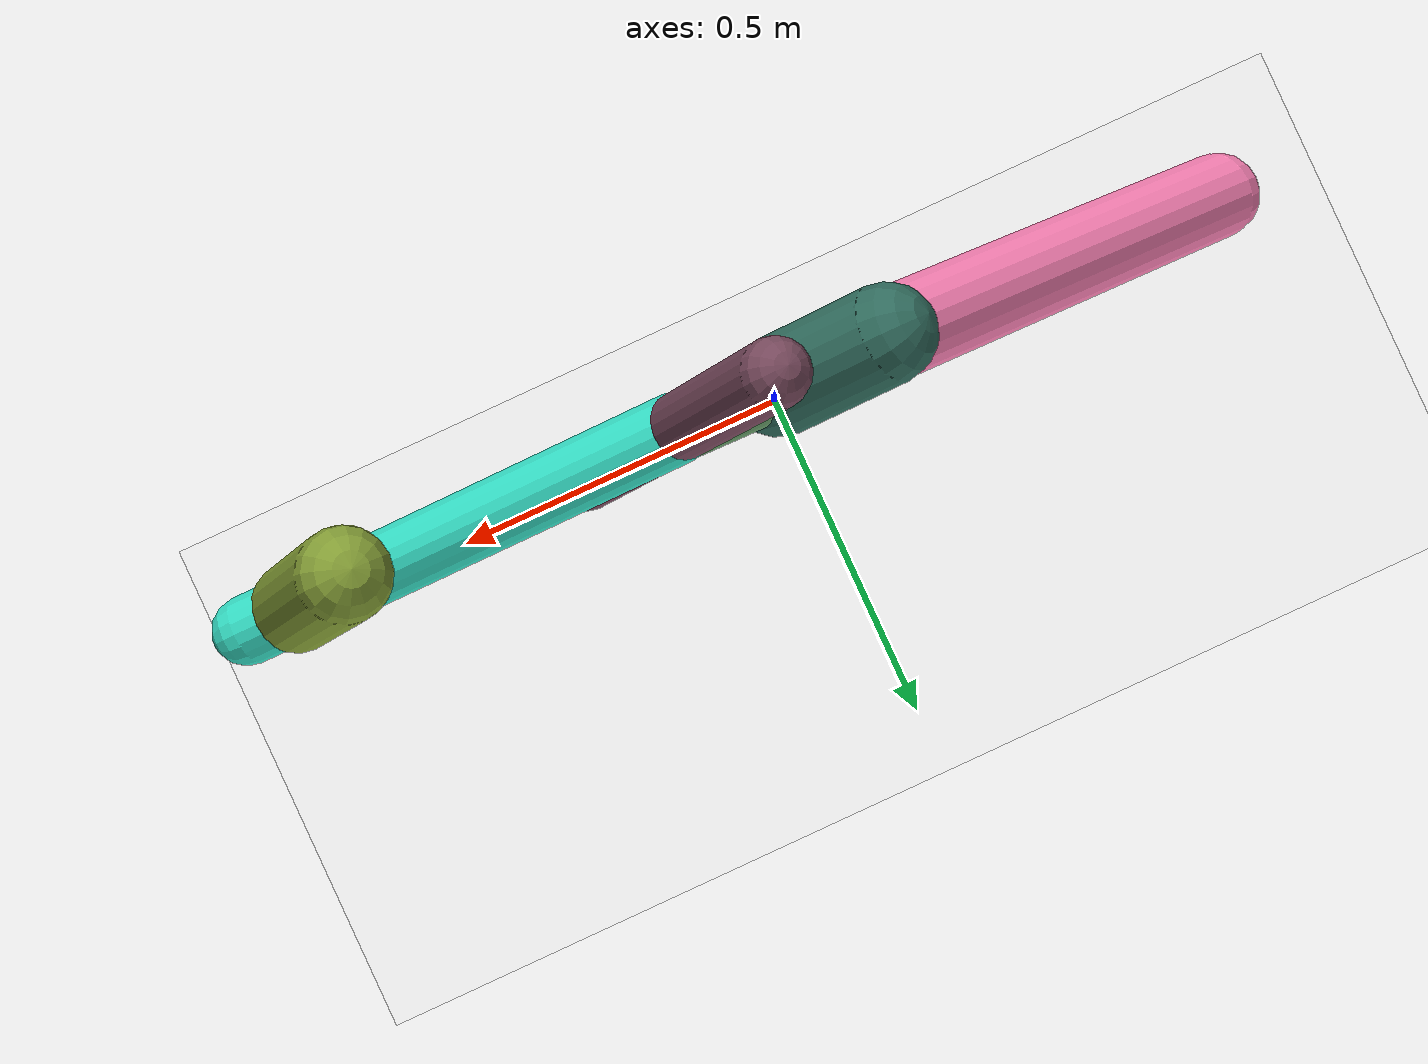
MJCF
<mujoco model="morphology">
  <option timestep="0.01"/>
  <default>
    <default class="/"/>
    <default class="0/"/>
    <default class="0/1/"/>
    <default class="0/1/2/"/>
    <default class="0/3/"/>
    <default class="0/3/4/"/>
    <default class="0/3/4/5/"/>
  </default>
  <asset>
    <texture name="texplane" type="2d" builtin="checker" rgb1="0.10000000000000001 0.20000000000000001 0.29999999999999999" rgb2="0.20000000000000001 0.29999999999999999 0.40000000000000002" width="300" height="300"/>
    <material name="MatPlane" class="/" texture="texplane" texrepeat="20 20" specular="1" shininess="1" reflectance="0.5"/>
  </asset>
  <worldbody>
    <light name="//unnamed_light_0" class="/" directional="true" pos="0 0 1.5" dir="0 0 -1.3" cutoff="100" exponent="1" diffuse="1 1 1" specular="0.10000000000000001 0.10000000000000001 0.10000000000000001"/>
    <geom name="ground" class="/" type="plane" size="15 15 0.5" material="MatPlane" rgba="1 1 1 1"/>
    <site name="body" class="/" size="9.9999999999999995e-07 9.9999999999999995e-07 9.9999999999999995e-07" pos="0 0 1.1270334482192994"/>
    <body pos="0 0 1.1270334482192994" name="0/">
      <joint name="0/rootx/" class="/" type="slide" axis="1 0 0" limited="false" stiffness="0" armature="0" damping="0"/>
      <joint name="0/rootz/" class="/" type="slide" axis="0 0 1" limited="false" stiffness="0" armature="0" damping="0"/>
      <joint name="0/rooty/" class="/" type="hinge" axis="0 1 0" limited="false" stiffness="0" armature="0" damping="0"/>
      <geom name="0/geom" class="0/" type="capsule" contype="1" conaffinity="1" condim="3" size="0.043404018612297486" rgba="0.46436967198134393 0.28516861986896913 0.36150573906233474 1" friction="0.59999999999999998 0.10000000000000001 0.10000000000000001" fromto="0 0 0 0.27844281371357349 0 -0.67840702794645957"/>
      <site name="0/end0" class="0/" size="0.0050000000000000001" pos="0.27844281371357349 0 -0.67840702794645957"/>
      <site name="0/attach1" class="0/" size="9.9999999999999995e-07 9.9999999999999995e-07 9.9999999999999995e-07" pos="0.13236150613719555 0 -0.32248983119895325"/>
      <body pos="0.13236150613719555 0 -0.32248983119895325" name="0/1/">
        <geom name="0/1/geom" class="0/1/" type="capsule" contype="1" conaffinity="1" condim="3" size="0.045545998765012655" rgba="0.20340808807947885 0.85791315494939613 0.76157778466525317 1" friction="0.59999999999999998 0.10000000000000001 0.10000000000000001" fromto="0 0 0 0.61212303883683772 0 -0.15318152391514639"/>
        <site name="0/1/end1" class="0/1/" size="0.0050000000000000001" pos="0.61212303883683772 0 -0.15318152391514639"/>
        <site name="0/1/attach2" class="0/1/" size="9.9999999999999995e-07 9.9999999999999995e-07 9.9999999999999995e-07" pos="0.53957736166047499 0 -0.13502723682206805"/>
        <body pos="0.53957736166047499 0 -0.13502723682206805" name="0/1/2/">
          <joint name="0/1/2/joint/" class="0/1/" type="hinge" axis="0 1 0" limited="true" range="-34.065539360781102 34.065539360781102"/>
          <geom name="0/1/2/geom" class="0/1/2/" type="capsule" contype="1" conaffinity="1" condim="3" size="0.05916136211011587" rgba="0.5176485107147355 0.61927078079014819 0.2102289653823507 1" friction="0.59999999999999998 0.10000000000000001 0.10000000000000001" fromto="0 0 0 -0.11747669935891802 0 0.36601189426572178"/>
          <site name="0/1/2/end2" class="0/1/2/" size="0.0050000000000000001" pos="-0.11747669935891802 0 0.36601189426572178"/>
        </body>
      </body>
      <site name="0/attach3" class="0/" size="9.9999999999999995e-07 9.9999999999999995e-07 9.9999999999999995e-07" pos="0.15290767314431761 0 -0.37254917339958049"/>
      <body pos="0.15290767314431761 0 -0.37254917339958049" name="0/3/">
        <joint name="0/3/joint/" class="0/" type="hinge" axis="0 1 0" limited="true" range="-67.29165436287623 67.29165436287623"/>
        <geom name="0/3/geom" class="0/3/" type="capsule" contype="1" conaffinity="1" condim="3" size="0.042415361670495512" rgba="0.38680601664949044 0.59044074134924796 0.39134576980363467 1" friction="0.59999999999999998 0.10000000000000001 0.10000000000000001" fromto="0 0 0 -0.47189248773102577 0 -0.41096242410665285"/>
        <site name="0/3/end3" class="0/3/" size="0.0050000000000000001" pos="-0.47189248773102577 0 -0.41096242410665285"/>
        <site name="0/3/attach4" class="0/3/" size="9.9999999999999995e-07 9.9999999999999995e-07 9.9999999999999995e-07" pos="-0.1576252450105122 0 -0.13727290532085787"/>
        <body pos="-0.1576252450105122 0 -0.13727290532085787" name="0/3/4/">
          <joint name="0/3/4/joint/" class="0/3/" type="hinge" axis="0 1 0" limited="true" range="-30.130340262800893 30.130340262800893"/>
          <geom name="0/3/4/geom" class="0/3/4/" type="capsule" contype="1" conaffinity="1" condim="3" size="0.066364885199634557" rgba="0.19047394090403436 0.42213249168007183 0.36661394126717284 1" friction="0.59999999999999998 0.10000000000000001 0.10000000000000001" fromto="0 0 0 -0.15174976132774631 0 0.092037892680301159"/>
          <site name="0/3/4/end4" class="0/3/4/" size="0.0050000000000000001" pos="-0.15174976132774631 0 0.092037892680301159"/>
          <site name="0/3/4/attach5" class="0/3/4/" size="9.9999999999999995e-07 9.9999999999999995e-07 9.9999999999999995e-07" pos="-0.099020879385659705 0 0.060057248131829687"/>
          <body pos="-0.099020879385659705 0 0.060057248131829687" name="0/3/4/5/">
            <geom name="0/3/4/5/geom" class="0/3/4/5/" type="capsule" contype="1" conaffinity="1" condim="3" size="0.061732283666111269" rgba="0.98793902574826997 0.51015793317723712 0.71380123668820161 1" friction="0.59999999999999998 0.10000000000000001 0.10000000000000001" fromto="0 0 0 -0.60258638107846885 0 -0.57726856613634736"/>
            <site name="0/3/4/5/end5" class="0/3/4/5/" size="0.0050000000000000001" pos="-0.60258638107846885 0 -0.57726856613634736"/>
          </body>
        </body>
      </body>
      <camera name="0/side" class="0/" mode="trackcom" pos="0.40000000000000002 -4 0.20000000000000001" quat="0.70699999999999996 0.70699999999999996 0 0"/>
    </body>
  </worldbody>
  <actuator>
    <motor name="0/1/2/motor" class="0/1/2/" ctrllimited="true" ctrlrange="-1 1" gear="59" joint="0/1/2/joint/"/>
    <motor name="0/3/motor" class="0/3/" ctrllimited="true" ctrlrange="-1 1" gear="67" joint="0/3/joint/"/>
    <motor name="0/3/4/motor" class="0/3/4/" ctrllimited="true" ctrlrange="-1 1" gear="61" joint="0/3/4/joint/"/>
  </actuator>
  <sensor>
    <subtreelinvel name="velocity" body="0/"/>
  </sensor>
</mujoco>
